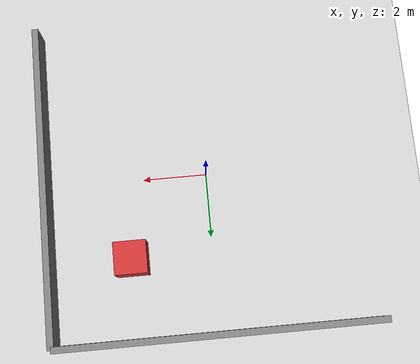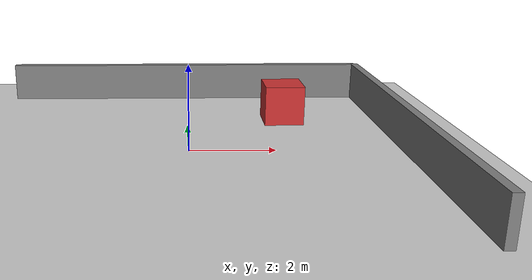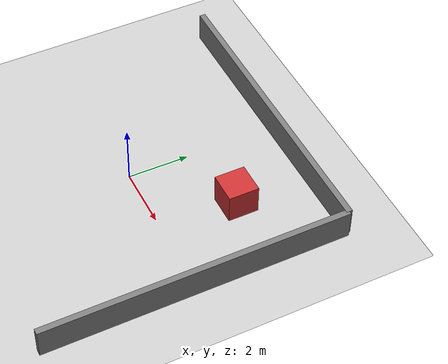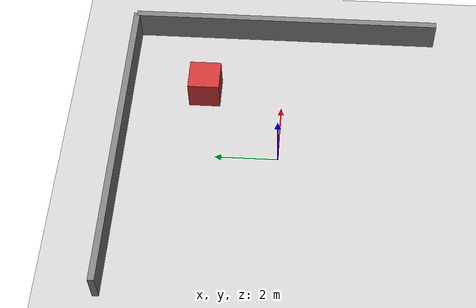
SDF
<?xml version="1.0" ?>
<sdf version="1.8">
  <world name="training_world_1">
    <physics name="1ms" type="ignored">
      <max_step_size>0.001</max_step_size>
      <real_time_factor>1.0</real_time_factor>
    </physics>
    <plugin filename="gz-sim-physics-system" name="gz::sim::systems::Physics" />
    <plugin filename="gz-sim-user-commands-system" name="gz::sim::systems::UserCommands" />
    <plugin filename="gz-sim-scene-broadcaster-system" name="gz::sim::systems::SceneBroadcaster" />
    <plugin filename="gz-sim-physics-system" name="gz::sim::systems::Physics" />
    <plugin filename="gz-sim-user-commands-system" name="gz::sim::systems::UserCommands" />
    <plugin filename="gz-sim-scene-broadcaster-system" name="gz::sim::systems::SceneBroadcaster" />
    <plugin filename="gz-sim-sensors-system" name="gz::sim::systems::Sensors">
      <render_engine>ogre2</render_engine>
    </plugin>
    <light type="directional" name="sun">
      <cast_shadows>true</cast_shadows>
      <pose>0 0 10 0 0 0</pose>
      <diffuse>0.8 0.8 0.8 1</diffuse>
      <specular>0.2 0.2 0.2 1</specular>
    </light>

    <model name="ground_plane">
      <static>true</static>
      <link name="link">
        <collision name="collision">
          <geometry>
            <plane><normal>0 0 1</normal><size>100 100</size></plane>
          </geometry>
        </collision>
        <visual name="visual">
          <geometry>
            <plane><normal>0 0 1</normal><size>100 100</size></plane>
          </geometry>
          <material>
            <ambient>0.8 0.8 0.8 1</ambient>
            <diffuse>0.8 0.8 0.8 1</diffuse>
          </material>
        </visual>
      </link>
    </model>
    <model name="wall_north">
      <static>true</static>
      <pose>5 0 0.5 0 0 0</pose>
      <link name="link">
        <collision name="collision"><geometry><box><size>0.2 10 1</size></box></geometry></collision>
        <visual name="visual"><geometry><box><size>0.2 10 1</size></box></geometry>
        <material><ambient>0.5 0.5 0.5 1</ambient><diffuse>0.5 0.5 0.5 1</diffuse></material></visual>
      </link>
    </model>

    <model name="wall_east">
      <static>true</static>
      <pose>0 5 0.5 0 0 0</pose>
      <link name="link">
        <collision name="collision"><geometry><box><size>10 0.2 1</size></box></geometry></collision>
        <visual name="visual"><geometry><box><size>10 0.2 1</size></box></geometry>
        <material><ambient>0.5 0.5 0.5 1</ambient><diffuse>0.5 0.5 0.5 1</diffuse></material></visual>
      </link>
    </model>

    <model name="center_block">
      <static>true</static>
      <pose>2.5 2.5 0.5 0 0 0</pose>
      <link name="link">
        <collision name="collision"><geometry><box><size>1 1 1</size></box></geometry></collision>
        <visual name="visual"><geometry><box><size>1 1 1</size></box></geometry>
        <material><ambient>0.8 0.2 0.2 1</ambient><diffuse>0.8 0.2 0.2 1</diffuse></material></visual>
      </link>
    </model>
  </world>
</sdf>
